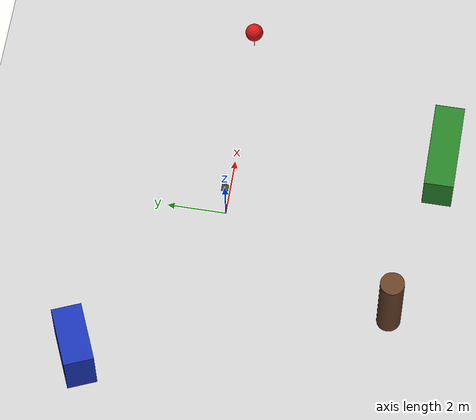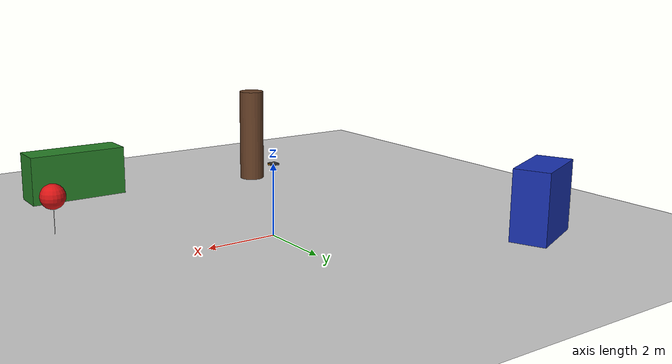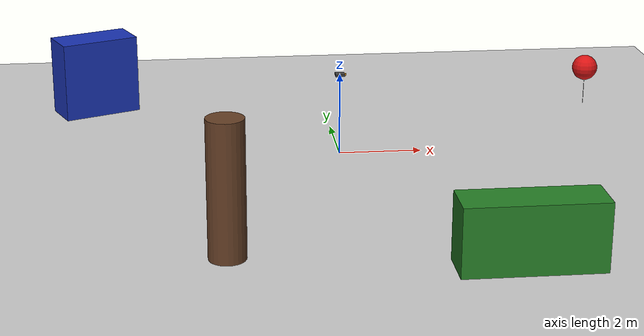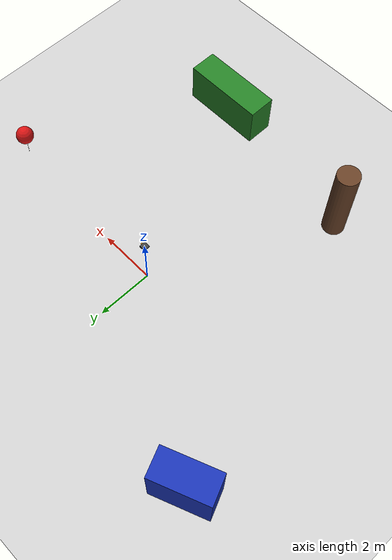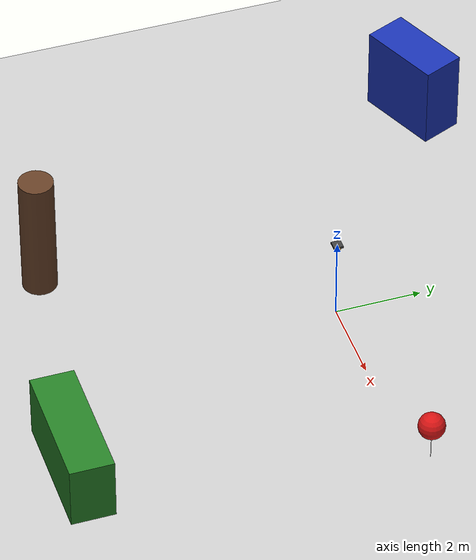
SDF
<?xml version="1.0"?>

<sdf version="1.6">
  <world name="balloon_track">
    <include><uri>model://sun</uri></include>
    <include><uri>model://ground_plane</uri></include>

    <physics type="ode">
      <max_step_size>0.004</max_step_size>
      <real_time_factor>1</real_time_factor>
      <real_time_update_rate>500</real_time_update_rate>
    </physics>
    <scene>
      <ambient>0.5 0.5 0.5 1</ambient>
      <background>0.62 0.76 0.92 1</background>
      <shadows>false</shadows>
    </scene>

    <model name="bg_blue"><static>true</static><pose>-6 4 1 0 0 0.4</pose>
      <link name="l"><visual name="v"><geometry><box><size>2 1 2</size></box></geometry>
        <material><ambient>0.1 0.2 0.6 1</ambient><diffuse>0.1 0.2 0.7 1</diffuse></material></visual></link></model>
    <model name="bg_green"><static>true</static><pose>3 -7 0.75 0 0 0</pose>
      <link name="l"><visual name="v"><geometry><box><size>3 1 1.5</size></box></geometry>
        <material><ambient>0.1 0.45 0.1 1</ambient><diffuse>0.15 0.5 0.15 1</diffuse></material></visual></link></model>
    <model name="bg_brown"><static>true</static><pose>-3 -6 1.5 0 0 0</pose>
      <link name="l"><visual name="v"><geometry><cylinder><radius>0.4</radius><length>3</length></cylinder></geometry>
        <material><ambient>0.35 0.22 0.12 1</ambient><diffuse>0.4 0.25 0.15 1</diffuse></material></visual></link></model>

    <model name="balloon">
      <pose>6 0 2 0 0 0</pose>
      <link name="link">
        <gravity>false</gravity>
        <kinematic>true</kinematic>
        <visual name="v">
          <geometry><sphere><radius>0.3</radius></sphere></geometry>
          <material><ambient>0.7 0.05 0.05 1</ambient><diffuse>0.85 0.08 0.08 1</diffuse>
            <specular>0.3 0.3 0.3 1</specular></material>
        </visual>
        <visual name="string">
          <pose>0 0 -0.6 0 0 0</pose>
          <geometry><cylinder><radius>0.005</radius><length>0.6</length></cylinder></geometry>
          <material><ambient>0.9 0.9 0.9 1</ambient><diffuse>0.9 0.9 0.9 1</diffuse></material>
        </visual>
      </link>
    </model>

    <model name="drone">
      <pose>0 0 2 0 0 0</pose>
      <link name="body">
        <gravity>false</gravity>
        <kinematic>true</kinematic>
        <visual name="frame">
          <geometry><box><size>0.22 0.22 0.05</size></box></geometry>
          <material><ambient>0.2 0.2 0.2 1</ambient><diffuse>0.25 0.25 0.25 1</diffuse></material>
        </visual>
        <visual name="nose">
          <pose>0.13 0 0 0 0 0</pose>
          <geometry><box><size>0.05 0.05 0.04</size></box></geometry>
          <material><ambient>0.9 0.6 0.1 1</ambient><diffuse>0.9 0.6 0.1 1</diffuse></material>
        </visual>
        <sensor name="cam" type="camera">
          <pose>0.16 0 0 0 0 0</pose>
          <always_on>true</always_on>
          <update_rate>9</update_rate>
          <visualize>true</visualize>
          <camera>
            <horizontal_fov>1.0856</horizontal_fov>
            <image><width>160</width><height>120</height><format>R8G8B8</format></image>
            <clip><near>0.05</near><far>100</far></clip>
            <noise><type>gaussian</type><mean>0</mean><stddev>0.01</stddev></noise>
          </camera>
        </sensor>
      </link>
      <plugin name="yaw_bridge" filename="libyaw_bridge.so">
        <camera>cam</camera>
        <balloon>balloon</balloon>
        <full_stick_rate_dps>400</full_stick_rate_dps>
        <yaw_tau>0.08</yaw_tau>
        <balloon_radius>6</balloon_radius>
        <balloon_speed>1.0</balloon_speed>
        <pilot_drift>0.05</pilot_drift>
      </plugin>
    </model>
  </world>
</sdf>
